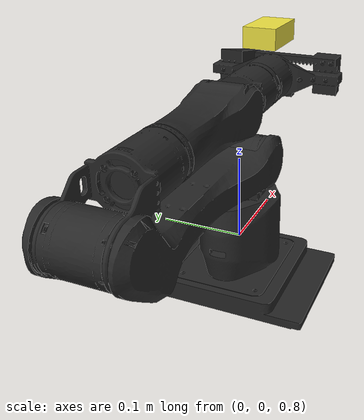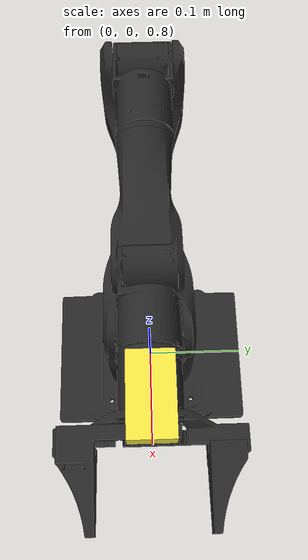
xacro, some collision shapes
<?xml version="1.0"?>
<robot name="alicia_calibration" xmlns:xacro="http://www.ros.org/wiki/xacro">

  <xacro:arg name="alicia_base_link" default="alicia_base_link"/>
  <xacro:arg name="c10_mount_xyz" default="-0.055 0 -0.10"/>
  <xacro:arg name="c10_mount_rpy" default="0 -1.57079632679 0"/>

  <link name="world"/>
  <joint name="world_to_base" type="fixed">
    <parent link="world"/>
    <child link="$(arg alicia_base_link)"/>
    <origin xyz="0 0 0.75" rpy="0 0 0"/>
  </joint>

  <!-- Alicia-M arm geometry (joint1–tool0) -->
  <xacro:include filename="$(find alicia_m_descriptions)/urdf/Alicia_M_v1_1/Alicia_M_v1_1_follower.urdf"/>
  <xacro:include filename="$(find alicia_m_moveit_config)/config/alicia_m_v1_1_follower.ros2_control.xacro"/>

  <xacro:arg name="initial_positions_file" default="$(find alicia_m_moveit_config)/config/initial_positions.yaml"/>
  <xacro:arg name="gazebo_controllers_file" default="$(find wvcsc_description)/config/ros2_controllers.yaml"/>
  <xacro:arg name="ros2_control_plugin" default="gazebo_ros2_control/GazeboSystem"/>
  <xacro:property name="c10_calibration" value="${xacro.load_yaml('$(find wvcsc_c10_camera)/config/c10_intrinsics.yaml')}"/>
  <xacro:property name="c10_width" value="${c10_calibration['image_width']}"/>
  <xacro:property name="c10_height" value="${c10_calibration['image_height']}"/>
  <xacro:property name="c10_fx" value="${c10_calibration['camera_matrix']['data'][0]}"/>
  <xacro:property name="c10_fy" value="${c10_calibration['camera_matrix']['data'][4]}"/>
  <xacro:property name="c10_cx" value="${c10_calibration['camera_matrix']['data'][2]}"/>
  <xacro:property name="c10_cy" value="${c10_calibration['camera_matrix']['data'][5]}"/>
  <xacro:property name="c10_k1" value="${c10_calibration['distortion_coefficients']['data'][0]}"/>
  <xacro:property name="c10_k2" value="${c10_calibration['distortion_coefficients']['data'][1]}"/>
  <xacro:property name="c10_p1" value="${c10_calibration['distortion_coefficients']['data'][2]}"/>
  <xacro:property name="c10_p2" value="${c10_calibration['distortion_coefficients']['data'][3]}"/>
  <xacro:property name="c10_k3" value="${c10_calibration['distortion_coefficients']['data'][4]}"/>

  <xacro:alicia_m_v1_1_follower_ros2_control
    name="AliciaHardware"
    initial_positions_file="$(arg initial_positions_file)"
    ros2_control_plugin="$(arg ros2_control_plugin)"
    serial_port="/dev/null"
    baudrate="1000000"
    control_mode="pv"
    default_speed="1.0"
    mit_kp="50.0"
    mit_kd="2.0"/>

  <!-- C10 eye-in-hand camera on tool0 -->
  <link name="camera_link">
    <visual>
      <origin xyz="0 0 0" rpy="0 0 0"/>
      <geometry>
        <mesh filename="package://wvcsc_description/meshes/c10/camera.dae"/>
      </geometry>
    </visual>
    <collision>
      <origin xyz="0 0 0" rpy="0 0 0"/>
      <geometry><box size="0.070 0.040 0.025"/></geometry>
    </collision>
    <inertial>
      <mass value="0.130"/>
      <inertia ixx="0.000020" ixy="0" ixz="0" iyy="0.000055" iyz="0" izz="0.000060"/>
    </inertial>
  </link>
  <joint name="c10_mount_joint" type="fixed">
    <parent link="tool0"/>
    <child link="camera_link"/>
    <origin xyz="$(arg c10_mount_xyz)" rpy="$(arg c10_mount_rpy)"/>
  </joint>

  <link name="camera_color_optical_frame"/>
  <joint name="camera_color_optical_joint" type="fixed">
    <parent link="camera_link"/>
    <child link="camera_color_optical_frame"/>
    <origin xyz="0 0 0" rpy="-1.57079632679 0 -1.57079632679"/>
  </joint>

  <!-- Gazebo C10 camera sensor on link6 -->
  <gazebo reference="link6">
    <sensor name="c10_color" type="camera">
      <always_on>true</always_on>
      <update_rate>30.0</update_rate>
      <visualize>false</visualize>
      <pose>-0.055 0 0.05 0 -1.57079632679 0</pose>
      <camera name="c10_optical">
        <horizontal_fov>${2.0 * atan(c10_width / (2.0 * c10_fx))}</horizontal_fov>
        <image><width>${c10_width}</width><height>${c10_height}</height><format>R8G8B8</format></image>
        <clip><near>0.02</near><far>300</far></clip>
        <distortion>
          <k1>${c10_k1}</k1><k2>${c10_k2}</k2><k3>${c10_k3}</k3>
          <p1>${c10_p1}</p1><p2>${c10_p2}</p2>
          <center>${c10_cx / c10_width} ${c10_cy / c10_height}</center>
        </distortion>
        <lens>
          <intrinsics>
            <fx>${c10_fx}</fx><fy>${c10_fy}</fy>
            <cx>${c10_cx}</cx><cy>${c10_cy}</cy><s>0</s>
          </intrinsics>
        </lens>
        <noise><type>gaussian</type><mean>0.0</mean><stddev>0.0</stddev></noise>
      </camera>
      <plugin name="c10_camera_plugin" filename="libgazebo_ros_camera.so">
        <ros>
          <namespace>/camera</namespace>
          <qos>
            <topic name="color/image_raw">
              <publisher>
                <reliability>best_effort</reliability>
                <history depth="1">keep_last</history>
              </publisher>
            </topic>
            <topic name="color/camera_info">
              <publisher>
                <reliability>best_effort</reliability>
                <history depth="1">keep_last</history>
              </publisher>
            </topic>
          </qos>
        </ros>
        <camera_name>color</camera_name>
        <frame_name>camera_color_optical_frame</frame_name>
        <focal_length>${c10_fx}</focal_length>
        <cx>${c10_cx}</cx><cy>${c10_cy}</cy>
        <P_fx>${c10_fx}</P_fx><P_fy>${c10_fy}</P_fy>
        <P_cx>${c10_cx}</P_cx><P_cy>${c10_cy}</P_cy>
        <border_crop>false</border_crop>
      </plugin>
    </sensor>
  </gazebo>

  <gazebo>
    <plugin name="gazebo_ros2_control" filename="libgazebo_ros2_control.so">
      <parameters>$(arg gazebo_controllers_file)</parameters>
    </plugin>
  </gazebo>
</robot>

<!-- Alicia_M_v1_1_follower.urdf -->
<robot
  xmlns:xacro="http://www.ros.org/wiki/xacro"
  name="alicia_m_v1_1_follower">
  <xacro:arg name="alicia_base_link" default="base_link" />
  <xacro:arg name="use_collision_meshes" default="true" />
   <mujoco>
    <compiler meshdir="../../meshes/Alicia_M_v1_1/follower" discardvisual="false" />
  </mujoco>
  <link
    name="$(arg alicia_base_link)">
    <inertial>
      <origin
        xyz="-0.0074155 8.4202E-06 0.038118"
        rpy="0 0 0" />
      <mass
        value="2.5385" />
      <inertia
        ixx="0.0058527"
        ixy="2.114E-07"
        ixz="1.4479E-06"
        iyy="0.0045151"
        iyz="3.0868E-08"
        izz="0.0084155" />
    </inertial>
    <visual>
      <origin
        xyz="0 0 0"
        rpy="0 0 0" />
      <geometry>
        <mesh
          filename="package://alicia_m_descriptions/meshes/Alicia_M_v1_1/follower/base_link.STL" />
      </geometry>
      <material
        name="">
        <color
          rgba="0.15 0.15 0.15 1" />
      </material>
    </visual>
    <xacro:if value="$(arg use_collision_meshes)">
    <collision>
      <origin
        xyz="0 0 0"
        rpy="0 0 0" />
      <geometry>
        <mesh
          filename="package://alicia_m_descriptions/meshes/Alicia_M_v1_1/follower/base_link.STL" />
      </geometry>
    </collision>
    </xacro:if>
  </link>
  <link
    name="link1">
    <inertial>
      <origin
        xyz="0.00037898 -0.0010139 0.039387"
        rpy="0 0 0" />
      <mass
        value="0.54365" />
      <inertia
        ixx="0.00018974"
        ixy="-3.0439E-07"
        ixz="-2.5092E-07"
        iyy="0.00022251"
        iyz="4.4259E-07"
        izz="0.0002033" />
    </inertial>
    <visual>
      <origin
        xyz="0 0 0"
        rpy="0 0 0" />
      <geometry>
        <mesh
          filename="package://alicia_m_descriptions/meshes/Alicia_M_v1_1/follower/link1.STL" />
      </geometry>
      <material
        name="">
        <color
          rgba="0.15 0.15 0.15 1" />
      </material>
    </visual>
    <xacro:if value="$(arg use_collision_meshes)">
    <collision>
      <origin
        xyz="0 0 0"
        rpy="0 0 0" />
      <geometry>
        <mesh
          filename="package://alicia_m_descriptions/meshes/Alicia_M_v1_1/follower/link1.STL" />
      </geometry>
    </collision>
    </xacro:if>
  </link>
  <joint
    name="joint1"
    type="revolute">
    <origin
      xyz="0 0 0.10705"
      rpy="0 0 0" />
    <parent
      link="$(arg alicia_base_link)" />
    <child
      link="link1" />
    <axis
      xyz="0 0 1" />
    <limit
      lower="-2.75"
      upper="2.75"
      effort="5"
      velocity="10" />
  </joint>
  <link
    name="link2">
    <inertial>
      <origin
        xyz="-0.19722 0.016179 0.00075589"
        rpy="0 0 0" />
      <mass
        value="1.1153" />
      <inertia
        ixx="0.00057637"
        ixy="0.00022961"
        ixz="-1.956E-07"
        iyy="0.0033441"
        iyz="6.7003E-07"
        izz="0.0032279" />
    </inertial>
    <visual>
      <origin
        xyz="0 0 0"
        rpy="0 0 0" />
      <geometry>
        <mesh
          filename="package://alicia_m_descriptions/meshes/Alicia_M_v1_1/follower/link2.STL" />
      </geometry>
      <material
        name="">
        <color
          rgba="0.15 0.15 0.15 1" />
      </material>
    </visual>
    <xacro:if value="$(arg use_collision_meshes)">
    <collision>
      <origin
        xyz="0 0 0"
        rpy="0 0 0" />
      <geometry>
        <mesh
          filename="package://alicia_m_descriptions/meshes/Alicia_M_v1_1/follower/link2.STL" />
      </geometry>
    </collision>
    </xacro:if>
  </link>
  <joint
    name="joint2"
    type="revolute">
    <origin
      xyz="0 0 0.046"
      rpy="1.5708 0 0" />
    <parent
      link="link1" />
    <child
      link="link2" />
    <axis
      xyz="0 0 1" />
    <limit
      lower="-3.14"
      upper="0"
      effort="5"
      velocity="10" />
  </joint>
  <link
    name="link3">
    <inertial>
      <origin
        xyz="0.026259 -0.064912 -0.00065987"
        rpy="0 0 0" />
      <mass
        value="0.4356" />
      <inertia
        ixx="0.00012982"
        ixy="9.5271E-06"
        ixz="-6.8812E-08"
        iyy="0.0001789"
        iyz="1.5081E-07"
        izz="0.00014855" />
    </inertial>
    <visual>
      <origin
        xyz="0 0 0"
        rpy="0 0 0" />
      <geometry>
        <mesh
          filename="package://alicia_m_descriptions/meshes/Alicia_M_v1_1/follower/link3.STL" />
      </geometry>
      <material
        name="">
        <color
          rgba="0.15 0.15 0.15 1" />
      </material>
    </visual>
    <xacro:if value="$(arg use_collision_meshes)">
    <collision>
      <origin
        xyz="0 0 0"
        rpy="0 0 0" />
      <geometry>
        <mesh
          filename="package://alicia_m_descriptions/meshes/Alicia_M_v1_1/follower/link3.STL" />
      </geometry>
    </collision>
    </xacro:if>
  </link>
  <joint
    name="joint3"
    type="revolute">
    <origin
      xyz="-0.28185 0.040324 0"
      rpy="0 0 1.5708" />
    <parent
      link="link2" />
    <child
      link="link3" />
    <axis
      xyz="0 0 -1" />
    <limit
      lower="-3.14"
      upper="0"
      effort="5"
      velocity="10" />
  </joint>
  <link
    name="link4">
    <inertial>
      <origin
        xyz="3.9183E-06 0.001144 0.11644"
        rpy="0 0 0" />
      <mass
        value="0.57265" />
      <inertia
        ixx="0.00034557"
        ixy="-1.3549E-07"
        ixz="-1.4243E-09"
        iyy="0.00037178"
        iyz="-7.3926E-08"
        izz="0.00019935" />
    </inertial>
    <visual>
      <origin
        xyz="0 0 0"
        rpy="0 0 0" />
      <geometry>
        <mesh
          filename="package://alicia_m_descriptions/meshes/Alicia_M_v1_1/follower/link4.STL" />
      </geometry>
      <material
        name="">
        <color
          rgba="0.15 0.15 0.15 1" />
      </material>
    </visual>
    <xacro:if value="$(arg use_collision_meshes)">
    <collision>
      <origin
        xyz="0 0 0"
        rpy="0 0 0" />
      <geometry>
        <mesh
          filename="package://alicia_m_descriptions/meshes/Alicia_M_v1_1/follower/link4.STL" />
      </geometry>
    </collision>
    </xacro:if>
  </link>
  <joint
    name="joint4"
    type="revolute">
    <origin
      xyz="0.028563 -0.091416 0"
      rpy="-1.5708 0 -3.1412" />
    <parent
      link="link3" />
    <child
      link="link4" />
    <axis
      xyz="-0.00034722 0 1" />
    <limit
      lower="-1.57"
      upper="1.57"
      effort="5"
      velocity="10" />
  </joint>
  <link
    name="link5">
    <inertial>
      <origin
        xyz="-0.0001129 0.054381 0.0022373"
        rpy="0 0 0" />
      <mass
        value="0.38891" />
      <inertia
        ixx="0.00010415"
        ixy="-1.2554E-07"
        ixz="-1.4534E-07"
        iyy="0.0001484"
        iyz="5.2027E-08"
        izz="0.00011043" />
    </inertial>
    <visual>
      <origin
        xyz="0 0 0"
        rpy="0 0 0" />
      <geometry>
        <mesh
          filename="package://alicia_m_descriptions/meshes/Alicia_M_v1_1/follower/link5.STL" />
      </geometry>
      <material
        name="">
        <color
          rgba="0.15 0.15 0.15 1" />
      </material>
    </visual>
    <xacro:if value="$(arg use_collision_meshes)">
    <collision>
      <origin
        xyz="0 0 0"
        rpy="0 0 0" />
      <geometry>
        <mesh
          filename="package://alicia_m_descriptions/meshes/Alicia_M_v1_1/follower/link5.STL" />
      </geometry>
    </collision>
    </xacro:if>
  </link>
  <joint
    name="joint5"
    type="revolute">
    <origin
      xyz="-8.0556E-05 0 0.151"
      rpy="1.5708 0.00034722 0" />
    <parent
      link="link4" />
    <child
      link="link5" />
    <axis
      xyz="0 0 1" />
    <limit
      lower="-1.57"
      upper="1.57"
      effort="5"
      velocity="10" />
  </joint>
  <link
    name="link6">
    <inertial>
      <origin
        xyz="-0.00011097 -0.00066921 0.038228"
        rpy="0 0 0" />
      <mass
        value="0.35658" />
      <inertia
        ixx="0.00018353"
        ixy="5.0323E-08"
        ixz="-1.1884E-07"
        iyy="9.5615E-05"
        iyz="-1.2974E-08"
        izz="0.00021713" />
    </inertial>
    <visual>
      <origin
        xyz="0 0 0"
        rpy="0 0 0" />
      <geometry>
        <mesh
          filename="package://alicia_m_descriptions/meshes/Alicia_M_v1_1/follower/link6.STL" />
      </geometry>
      <material
        name="">
        <color
          rgba="0.15 0.15 0.15 1" />
      </material>
    </visual>
    <xacro:if value="$(arg use_collision_meshes)">
    <collision>
      <origin
        xyz="0 0 0"
        rpy="0 0 0" />
      <geometry>
        <mesh
          filename="package://alicia_m_descriptions/meshes/Alicia_M_v1_1/follower/link6.STL" />
      </geometry>
    </collision>
    </xacro:if>
  </link>
  <joint
    name="joint6"
    type="revolute">
    <origin
      xyz="5.2431E-05 0.081 0"
      rpy="-1.5708 0 0.00034722" />
    <parent
      link="link5" />
    <child
      link="link6" />
    <axis
      xyz="-0.00034722 0 1" />
    <limit
      lower="-2.75"
      upper="2.75"
      effort="5"
      velocity="10" />
  </joint>
  <link
    name="link7">
    <inertial>
      <origin
        xyz="-0.0062638 -0.056089 0.0037593"
        rpy="0 0 0" />
      <mass
        value="0.048674" />
      <inertia
        ixx="2.5291E-05"
        ixy="-1.0647E-06"
        ixz="1.8963E-07"
        iyy="1.9457E-05"
        iyz="2.7404E-06"
        izz="1.9529E-05" />
    </inertial>
    <visual>
      <origin
        xyz="0 0 0"
        rpy="0 0 0" />
      <geometry>
        <mesh
          filename="package://alicia_m_descriptions/meshes/Alicia_M_v1_1/follower/link7.STL" />
      </geometry>
      <material
        name="">
        <color
          rgba="0.15 0.15 0.15 1" />
      </material>
    </visual>
    <xacro:if value="$(arg use_collision_meshes)">
    <collision>
      <origin
        xyz="0 0 0"
        rpy="0 0 0" />
      <geometry>
        <mesh
          filename="package://alicia_m_descriptions/meshes/Alicia_M_v1_1/follower/link7.STL" />
      </geometry>
    </collision>
    </xacro:if>
  </link>
  <joint
    name="left_finger"
    type="prismatic">
    <origin
      xyz="0 -0.048175 0.151"
      rpy="1.5708 0.00034722 0" />
    <parent
      link="link6" />
    <child
      link="link7" />
    <axis
      xyz="0 0 1" />
    <limit
      lower="-0.05"
      upper="0.0"
      effort="5"
      velocity="10" />
  </joint>
  <link
    name="link8">
    <inertial>
      <origin
        xyz="0.0062638 -0.056089 -0.0037593"
        rpy="0 0 0" />
      <mass
        value="0.048674" />
      <inertia
        ixx="2.5291E-05"
        ixy="1.0647E-06"
        ixz="1.8963E-07"
        iyy="1.9457E-05"
        iyz="-2.7404E-06"
        izz="1.9529E-05" />
    </inertial>
    <visual>
      <origin
        xyz="0 0 0"
        rpy="0 0 0" />
      <geometry>
        <mesh
          filename="package://alicia_m_descriptions/meshes/Alicia_M_v1_1/follower/link8.STL" />
      </geometry>
      <material
        name="">
        <color
          rgba="0.15 0.15 0.15 1" />
      </material>
    </visual>
    <xacro:if value="$(arg use_collision_meshes)">
    <collision>
      <origin
        xyz="0 0 0"
        rpy="0 0 0" />
      <geometry>
        <mesh
          filename="package://alicia_m_descriptions/meshes/Alicia_M_v1_1/follower/link8.STL" />
      </geometry>
    </collision>
    </xacro:if>
  </link>
  <joint
    name="right_finger"
    type="prismatic">
    <origin
      xyz="0 0.046825 0.151"
      rpy="1.5708 0.00034722 0" />
    <parent
      link="link6" />
    <child
      link="link8" />
    <axis
      xyz="0 0 1" />
    <limit
      lower="0.0"
      upper="0.05"
      effort="5"
      velocity="10" />
    <mimic joint="left_finger" multiplier="-1.0" offset="0" />
  </joint>
  <link
    name="tool0">
  </link>
  <joint
    name="tool0_fixed_joint"
    type="fixed">
    <origin
      xyz="0 0 0.15"
      rpy="0 0 0" />
    <parent
      link="link6" />
    <child
      link="tool0" />
    <axis
      xyz="0 0 0" />
  </joint>
</robot>
